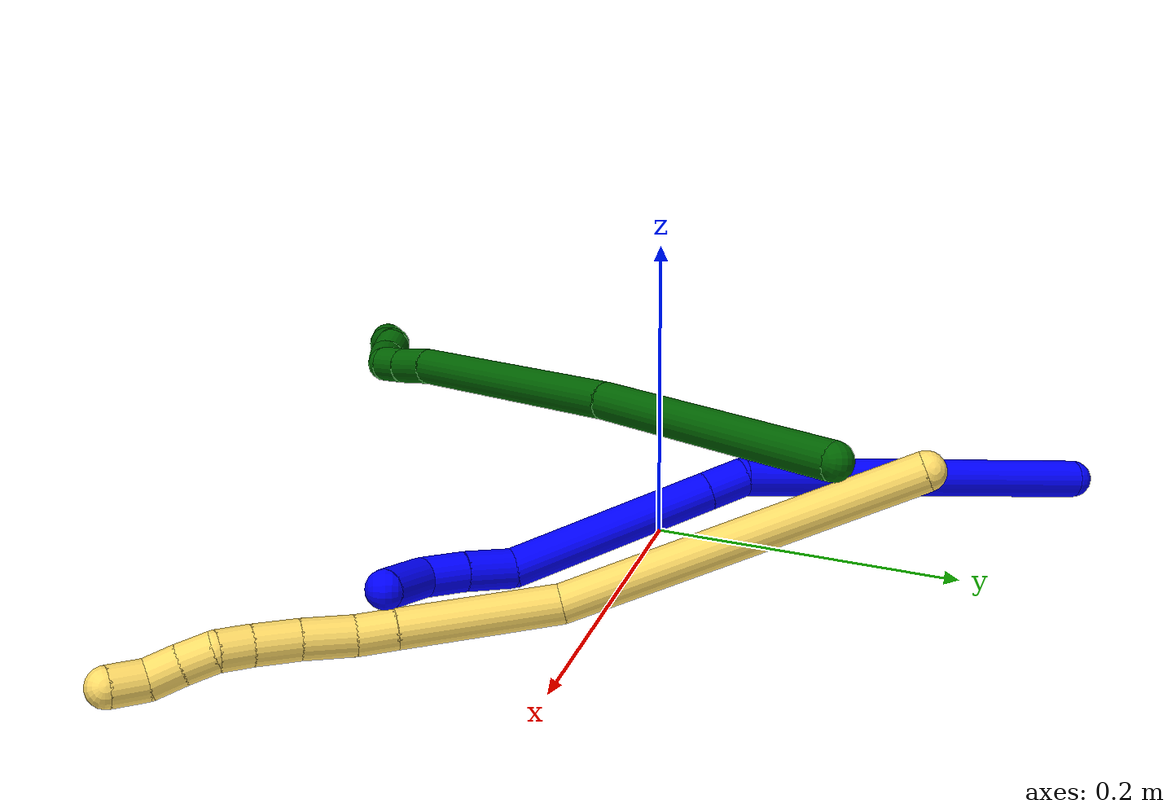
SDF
<sdf version="1.7">
 <world name="default">
  <model name="photoneo_s_sensor">
   <static>1</static>
   <pose>0 0 2 1.57079 1.57079 3.14159</pose>
   <link name="link">
    <inertial><mass>0.1</mass></inertial>
    <sensor name="sensor" type="depth">
     <update_rate>30</update_rate>
     <camera>
      <horizontal_fov>1.22</horizontal_fov>
      <image><width>1920</width><height>1200</height><format>B8G8R8</format></image>
      <clip><near>0.1</near><far>4</far></clip>
      <depth_camera><output>points</output></depth_camera>
     </camera>
     <plugin name="camera_plugin" filename="libgazebo_ros_depth_camera.so">
      <baseline>0.2</baseline>
      <alwaysOn>1</alwaysOn>
      <updateRate>0.0</updateRate>
      <cameraName>camera_ir</cameraName>
      <imageTopicName>/camera/color/image_raw</imageTopicName>
      <cameraInfoTopicName>/camera/color/camera_info</cameraInfoTopicName>
      <depthImageTopicName>/camera/depth/image_raw</depthImageTopicName>
      <depthImageCameraInfoTopicName>/camera/depth/camera_info</depthImageCameraInfoTopicName>
      <pointCloudTopicName>/camera/depth/points</pointCloudTopicName>
      <frameName>fr_optical</frameName>
      <pointCloudCutoff>0.1</pointCloudCutoff>
      <pointCloudCutoffMax>2.0</pointCloudCutoffMax>
      <distortionK1>0</distortionK1>
      <distortionK2>0</distortionK2>
      <distortionK3>0</distortionK3>
      <distortionT1>0</distortionT1>
      <distortionT2>0</distortionT2>
      <CxPrime>0</CxPrime>
      <Cx>0</Cx>
      <Cy>0</Cy>
      <focalLength>0</focalLength>
      <hackBaseline>0</hackBaseline>
     </plugin>
    </sensor>
   </link>
  </model>
  <model name="bin">
   <static>1</static>
   <link name="bottom">
    <collision name="collision-bottom">
     <pose>0 0 -0.01 0 -0 0</pose>
     <geometry><box><size>0.8 0.6 0.02</size></box></geometry>
     <surface>
      <friction><ode><mu>100</mu><mu2>100</mu2></ode></friction>
      <contact><collide_bitmask>65535</collide_bitmask></contact>
     </surface>
    </collision>
   </link>
   <link name="west_wall">
    <collision name="collision-west_wall">
     <pose>-0.41 0 0.1 0 -0 0</pose>
     <geometry><box><size>0.02 0.6 0.2</size></box></geometry>
     <surface>
      <friction><ode><mu>100</mu><mu2>100</mu2></ode></friction>
      <contact><collide_bitmask>65535</collide_bitmask></contact>
     </surface>
    </collision>
   </link>
   <link name="east_wall">
    <collision name="collision-east_wall">
     <pose>0.41 0 0.1 0 -0 0</pose>
     <geometry><box><size>0.02 0.6 0.2</size></box></geometry>
     <surface>
      <friction><ode><mu>100</mu><mu2>100</mu2></ode></friction>
      <contact><collide_bitmask>65535</collide_bitmask></contact>
     </surface>
    </collision>
   </link>
   <link name="south_wall">
    <collision name="collision-south_wall">
     <pose>0 -0.31 0.1 0 -0 0</pose>
     <geometry><box><size>0.8 0.02 0.2</size></box></geometry>
     <surface>
      <friction><ode><mu>100</mu><mu2>100</mu2></ode></friction>
      <contact><collide_bitmask>65535</collide_bitmask></contact>
     </surface>
    </collision>
   </link>
   <link name="north_wall">
    <collision name="collision-north_wall">
     <pose>0 0.31 0.1 0 -0 0</pose>
     <geometry><box><size>0.8 0.02 0.2</size></box></geometry>
     <surface>
      <friction><ode><mu>100</mu><mu2>100</mu2></ode></friction>
      <contact><collide_bitmask>65535</collide_bitmask></contact>
     </surface>
    </collision>
   </link>
  </model>
  <model name="1">
   <static>0</static>
   <link name="1">
    <collision name="collision-cylinder-e_1_1_4">
     <pose>-0.00286 -0.023312 -0.120487 2.95047 -0.0233 -0.241902</pose>
     <geometry><cylinder><radius>0.0125</radius><length>0.24551</length></cylinder></geometry>
     <surface>
      <friction><ode><mu>1.16</mu><mu2>1.16</mu2><slip1>0</slip1><slip2>0</slip2></ode></friction>
      <contact><ode><kp>1e+06</kp><kd>1</kd><max_vel>0</max_vel><min_depth>0.001</min_depth></ode></contact>
     </surface>
    </collision>
    <visual name="visual-cylinder-e_1_1_4">
     <pose>-0.00286 -0.023312 -0.120487 2.95047 -0.0233 -0.241902</pose>
     <geometry><cylinder><radius>0.0125</radius><length>0.24551</length></cylinder></geometry>
     <material><ambient>0 0 1 1</ambient></material>
    </visual>
    <collision name="collision-cylinder-e_2_4_5">
     <pose>-0.001154 -0.048313 -0.253252 3.00494 0.352973 2.40883</pose>
     <geometry><cylinder><radius>0.0125</radius><length>0.026415</length></cylinder></geometry>
     <surface>
      <friction><ode><mu>1.16</mu><mu2>1.16</mu2><slip1>0</slip1><slip2>0</slip2></ode></friction>
      <contact><ode><kp>1e+06</kp><kd>1</kd><max_vel>0</max_vel><min_depth>0.001</min_depth></ode></contact>
     </surface>
    </collision>
    <visual name="visual-cylinder-e_2_4_5">
     <pose>-0.001154 -0.048313 -0.253252 3.00494 0.352973 2.40883</pose>
     <geometry><cylinder><radius>0.0125</radius><length>0.026415</length></cylinder></geometry>
     <material><ambient>0 0 1 1</ambient></material>
    </visual>
    <collision name="collision-cylinder-e_3_5_6">
     <pose>0.026538 -0.058547 -0.328056 3.00576 0.351263 2.40954</pose>
     <geometry><cylinder><radius>0.0125</radius><length>0.134424</length></cylinder></geometry>
     <surface>
      <friction><ode><mu>1.16</mu><mu2>1.16</mu2><slip1>0</slip1><slip2>0</slip2></ode></friction>
      <contact><ode><kp>1e+06</kp><kd>1</kd><max_vel>0</max_vel><min_depth>0.001</min_depth></ode></contact>
     </surface>
    </collision>
    <visual name="visual-cylinder-e_3_5_6">
     <pose>0.026538 -0.058547 -0.328056 3.00576 0.351263 2.40954</pose>
     <geometry><cylinder><radius>0.0125</radius><length>0.134424</length></cylinder></geometry>
     <material><ambient>0 0 1 1</ambient></material>
    </visual>
    <collision name="collision-cylinder-e_4_6_7">
     <pose>0.049884 -0.071721 -0.405753 2.84544 0.01382 0.092578</pose>
     <geometry><cylinder><radius>0.0125</radius><length>0.031725</length></cylinder></geometry>
     <surface>
      <friction><ode><mu>1.16</mu><mu2>1.16</mu2><slip1>0</slip1><slip2>0</slip2></ode></friction>
      <contact><ode><kp>1e+06</kp><kd>1</kd><max_vel>0</max_vel><min_depth>0.001</min_depth></ode></contact>
     </surface>
    </collision>
    <visual name="visual-cylinder-e_4_6_7">
     <pose>0.049884 -0.071721 -0.405753 2.84544 0.01382 0.092578</pose>
     <geometry><cylinder><radius>0.0125</radius><length>0.031725</length></cylinder></geometry>
     <material><ambient>0 0 1 1</ambient></material>
    </visual>
    <collision name="collision-cylinder-e_5_7_8">
     <pose>0.051203 -0.080473 -0.433659 2.82853 0.082016 0.508697</pose>
     <geometry><cylinder><radius>0.0125</radius><length>0.026863</length></cylinder></geometry>
     <surface>
      <friction><ode><mu>1.16</mu><mu2>1.16</mu2><slip1>0</slip1><slip2>0</slip2></ode></friction>
      <contact><ode><kp>1e+06</kp><kd>1</kd><max_vel>0</max_vel><min_depth>0.001</min_depth></ode></contact>
     </surface>
    </collision>
    <visual name="visual-cylinder-e_5_7_8">
     <pose>0.051203 -0.080473 -0.433659 2.82853 0.082016 0.508697</pose>
     <geometry><cylinder><radius>0.0125</radius><length>0.026863</length></cylinder></geometry>
     <material><ambient>0 0 1 1</ambient></material>
    </visual>
    <collision name="collision-cylinder-e_6_8_2">
     <pose>0.0537 -0.098366 -0.457156 2.23415 0.079736 0.163231</pose>
     <geometry><cylinder><radius>0.0125</radius><length>0.035064</length></cylinder></geometry>
     <surface>
      <friction><ode><mu>1.16</mu><mu2>1.16</mu2><slip1>0</slip1><slip2>0</slip2></ode></friction>
      <contact><ode><kp>1e+06</kp><kd>1</kd><max_vel>0</max_vel><min_depth>0.001</min_depth></ode></contact>
     </surface>
    </collision>
    <visual name="visual-cylinder-e_6_8_2">
     <pose>0.0537 -0.098366 -0.457156 2.23415 0.079736 0.163231</pose>
     <geometry><cylinder><radius>0.0125</radius><length>0.035064</length></cylinder></geometry>
     <material><ambient>0 0 1 1</ambient></material>
    </visual>
    <collision name="collision-sphere-2">
     <pose>0.055097 -0.112136 -0.467917 0 -0 0</pose>
     <geometry><sphere><radius>0.0125</radius></sphere></geometry>
     <surface>
      <friction><ode><mu>1.16</mu><mu2>1.16</mu2><slip1>0</slip1><slip2>0</slip2></ode></friction>
      <contact><ode><kp>1e+06</kp><kd>1</kd><max_vel>0</max_vel><min_depth>0.001</min_depth></ode></contact>
     </surface>
    </collision>
    <visual name="visual-sphere-2">
     <pose>0.055097 -0.112136 -0.467917 0 -0 0</pose>
     <geometry><sphere><radius>0.0125</radius></sphere></geometry>
     <material><ambient>0 0 1 1</ambient></material>
    </visual>
    <collision name="collision-sphere-4">
     <pose>-0.00572 -0.046624 -0.240975 0 -0 0</pose>
     <geometry><sphere><radius>0.0125</radius></sphere></geometry>
     <surface>
      <friction><ode><mu>1.16</mu><mu2>1.16</mu2><slip1>0</slip1><slip2>0</slip2></ode></friction>
      <contact><ode><kp>1e+06</kp><kd>1</kd><max_vel>0</max_vel><min_depth>0.001</min_depth></ode></contact>
     </surface>
    </collision>
    <visual name="visual-sphere-4">
     <pose>-0.00572 -0.046624 -0.240975 0 -0 0</pose>
     <geometry><sphere><radius>0.0125</radius></sphere></geometry>
     <material><ambient>0 0 1 1</ambient></material>
    </visual>
    <collision name="collision-sphere-1">
     <geometry><sphere><radius>0.0125</radius></sphere></geometry>
     <surface>
      <friction><ode><mu>1.16</mu><mu2>1.16</mu2><slip1>0</slip1><slip2>0</slip2></ode></friction>
      <contact><ode><kp>1e+06</kp><kd>1</kd><max_vel>0</max_vel><min_depth>0.001</min_depth></ode></contact>
     </surface>
    </collision>
    <visual name="visual-sphere-1">
     <geometry><sphere><radius>0.0125</radius></sphere></geometry>
     <material><ambient>0 0 1 1</ambient></material>
    </visual>
    <collision name="collision-sphere-8">
     <pose>0.052304 -0.084596 -0.446395 0 -0 0</pose>
     <geometry><sphere><radius>0.0125</radius></sphere></geometry>
     <surface>
      <friction><ode><mu>1.16</mu><mu2>1.16</mu2><slip1>0</slip1><slip2>0</slip2></ode></friction>
      <contact><ode><kp>1e+06</kp><kd>1</kd><max_vel>0</max_vel><min_depth>0.001</min_depth></ode></contact>
     </surface>
    </collision>
    <visual name="visual-sphere-8">
     <pose>0.052304 -0.084596 -0.446395 0 -0 0</pose>
     <geometry><sphere><radius>0.0125</radius></sphere></geometry>
     <material><ambient>0 0 1 1</ambient></material>
    </visual>
    <collision name="collision-sphere-5">
     <pose>0.003411 -0.050001 -0.26553 0 -0 0</pose>
     <geometry><sphere><radius>0.0125</radius></sphere></geometry>
     <surface>
      <friction><ode><mu>1.16</mu><mu2>1.16</mu2><slip1>0</slip1><slip2>0</slip2></ode></friction>
      <contact><ode><kp>1e+06</kp><kd>1</kd><max_vel>0</max_vel><min_depth>0.001</min_depth></ode></contact>
     </surface>
    </collision>
    <visual name="visual-sphere-5">
     <pose>0.003411 -0.050001 -0.26553 0 -0 0</pose>
     <geometry><sphere><radius>0.0125</radius></sphere></geometry>
     <material><ambient>0 0 1 1</ambient></material>
    </visual>
    <collision name="collision-sphere-6">
     <pose>0.049665 -0.067092 -0.390583 0 -0 0</pose>
     <geometry><sphere><radius>0.0125</radius></sphere></geometry>
     <surface>
      <friction><ode><mu>1.16</mu><mu2>1.16</mu2><slip1>0</slip1><slip2>0</slip2></ode></friction>
      <contact><ode><kp>1e+06</kp><kd>1</kd><max_vel>0</max_vel><min_depth>0.001</min_depth></ode></contact>
     </surface>
    </collision>
    <visual name="visual-sphere-6">
     <pose>0.049665 -0.067092 -0.390583 0 -0 0</pose>
     <geometry><sphere><radius>0.0125</radius></sphere></geometry>
     <material><ambient>0 0 1 1</ambient></material>
    </visual>
    <collision name="collision-sphere-7">
     <pose>0.050103 -0.07635 -0.420924 0 -0 0</pose>
     <geometry><sphere><radius>0.0125</radius></sphere></geometry>
     <surface>
      <friction><ode><mu>1.16</mu><mu2>1.16</mu2><slip1>0</slip1><slip2>0</slip2></ode></friction>
      <contact><ode><kp>1e+06</kp><kd>1</kd><max_vel>0</max_vel><min_depth>0.001</min_depth></ode></contact>
     </surface>
    </collision>
    <visual name="visual-sphere-7">
     <pose>0.050103 -0.07635 -0.420924 0 -0 0</pose>
     <geometry><sphere><radius>0.0125</radius></sphere></geometry>
     <material><ambient>0 0 1 1</ambient></material>
    </visual>
    <inertial>
     <pose>0.015351 -0.045511 -0.241841 0 -0 0</pose>
     <mass>0.5</mass>
     <inertia>
      <ixx>0.000912</ixx>
      <ixy>0</ixy>
      <ixz>0</ixz>
      <iyy>-0.001203</iyy>
      <iyz>0</iyz>
      <izz>0.000188</izz>
     </inertia>
    </inertial>
   </link>
   <pose>-0.140643 0.253968 0.012121 -1.73472 1.17436 0.302519</pose>
  </model>
  <model name="5">
   <static>0</static>
   <link name="5">
    <collision name="collision-cylinder-e_1_1_4">
     <pose>0.06546 -0.081053 -0.051181 2.13402 0.599138 1.02146</pose>
     <geometry><cylinder><radius>0.0125</radius><length>0.232156</length></cylinder></geometry>
     <surface>
      <friction><ode><mu>1.16</mu><mu2>1.16</mu2><slip1>0</slip1><slip2>0</slip2></ode></friction>
      <contact><ode><kp>1e+06</kp><kd>1</kd><max_vel>0</max_vel><min_depth>0.001</min_depth></ode></contact>
     </surface>
    </collision>
    <visual name="visual-cylinder-e_1_1_4">
     <pose>0.06546 -0.081053 -0.051181 2.13402 0.599138 1.02146</pose>
     <geometry><cylinder><radius>0.0125</radius><length>0.232156</length></cylinder></geometry>
     <material><ambient>1 0.858824 0.4 1</ambient></material>
    </visual>
    <collision name="collision-cylinder-e_2_4_5">
     <pose>0.154455 -0.206651 -0.103453 1.59528 0.485945 0.497507</pose>
     <geometry><cylinder><radius>0.0125</radius><length>0.100785</length></cylinder></geometry>
     <surface>
      <friction><ode><mu>1.16</mu><mu2>1.16</mu2><slip1>0</slip1><slip2>0</slip2></ode></friction>
      <contact><ode><kp>1e+06</kp><kd>1</kd><max_vel>0</max_vel><min_depth>0.001</min_depth></ode></contact>
     </surface>
    </collision>
    <visual name="visual-cylinder-e_2_4_5">
     <pose>0.154455 -0.206651 -0.103453 1.59528 0.485945 0.497507</pose>
     <geometry><cylinder><radius>0.0125</radius><length>0.100785</length></cylinder></geometry>
     <material><ambient>1 0.858824 0.4 1</ambient></material>
    </visual>
    <collision name="collision-cylinder-e_3_5_6">
     <pose>0.183695 -0.261813 -0.105143 1.62719 0.492363 0.519704</pose>
     <geometry><cylinder><radius>0.0125</radius><length>0.024134</length></cylinder></geometry>
     <surface>
      <friction><ode><mu>1.16</mu><mu2>1.16</mu2><slip1>0</slip1><slip2>0</slip2></ode></friction>
      <contact><ode><kp>1e+06</kp><kd>1</kd><max_vel>0</max_vel><min_depth>0.001</min_depth></ode></contact>
     </surface>
    </collision>
    <visual name="visual-cylinder-e_3_5_6">
     <pose>0.183695 -0.261813 -0.105143 1.62719 0.492363 0.519704</pose>
     <geometry><cylinder><radius>0.0125</radius><length>0.024134</length></cylinder></geometry>
     <material><ambient>1 0.858824 0.4 1</ambient></material>
    </visual>
    <collision name="collision-cylinder-e_4_6_7">
     <pose>0.195797 -0.287206 -0.104626 1.49539 0.407603 0.378699</pose>
     <geometry><cylinder><radius>0.0125</radius><length>0.032281</length></cylinder></geometry>
     <surface>
      <friction><ode><mu>1.16</mu><mu2>1.16</mu2><slip1>0</slip1><slip2>0</slip2></ode></friction>
      <contact><ode><kp>1e+06</kp><kd>1</kd><max_vel>0</max_vel><min_depth>0.001</min_depth></ode></contact>
     </surface>
    </collision>
    <visual name="visual-cylinder-e_4_6_7">
     <pose>0.195797 -0.287206 -0.104626 1.49539 0.407603 0.378699</pose>
     <geometry><cylinder><radius>0.0125</radius><length>0.032281</length></cylinder></geometry>
     <material><ambient>1 0.858824 0.4 1</ambient></material>
    </visual>
    <collision name="collision-cylinder-e_5_7_8">
     <pose>0.208346 -0.314314 -0.101958 1.44561 0.459478 0.406856</pose>
     <geometry><cylinder><radius>0.0125</radius><length>0.027735</length></cylinder></geometry>
     <surface>
      <friction><ode><mu>1.16</mu><mu2>1.16</mu2><slip1>0</slip1><slip2>0</slip2></ode></friction>
      <contact><ode><kp>1e+06</kp><kd>1</kd><max_vel>0</max_vel><min_depth>0.001</min_depth></ode></contact>
     </surface>
    </collision>
    <visual name="visual-cylinder-e_5_7_8">
     <pose>0.208346 -0.314314 -0.101958 1.44561 0.459478 0.406856</pose>
     <geometry><cylinder><radius>0.0125</radius><length>0.027735</length></cylinder></geometry>
     <material><ambient>1 0.858824 0.4 1</ambient></material>
    </visual>
    <collision name="collision-cylinder-e_6_8_9">
     <pose>0.219364 -0.335358 -0.098661 1.3731 0.501238 0.413615</pose>
     <geometry><cylinder><radius>0.0125</radius><length>0.020261</length></cylinder></geometry>
     <surface>
      <friction><ode><mu>1.16</mu><mu2>1.16</mu2><slip1>0</slip1><slip2>0</slip2></ode></friction>
      <contact><ode><kp>1e+06</kp><kd>1</kd><max_vel>0</max_vel><min_depth>0.001</min_depth></ode></contact>
     </surface>
    </collision>
    <visual name="visual-cylinder-e_6_8_9">
     <pose>0.219364 -0.335358 -0.098661 1.3731 0.501238 0.413615</pose>
     <geometry><cylinder><radius>0.0125</radius><length>0.020261</length></cylinder></geometry>
     <material><ambient>1 0.858824 0.4 1</ambient></material>
    </visual>
    <collision name="collision-cylinder-e_7_9_10">
     <pose>0.230681 -0.351639 -0.09845 1.77072 0.695763 0.834832</pose>
     <geometry><cylinder><radius>0.0125</radius><length>0.020126</length></cylinder></geometry>
     <surface>
      <friction><ode><mu>1.16</mu><mu2>1.16</mu2><slip1>0</slip1><slip2>0</slip2></ode></friction>
      <contact><ode><kp>1e+06</kp><kd>1</kd><max_vel>0</max_vel><min_depth>0.001</min_depth></ode></contact>
     </surface>
    </collision>
    <visual name="visual-cylinder-e_7_9_10">
     <pose>0.230681 -0.351639 -0.09845 1.77072 0.695763 0.834832</pose>
     <geometry><cylinder><radius>0.0125</radius><length>0.020126</length></cylinder></geometry>
     <material><ambient>1 0.858824 0.4 1</ambient></material>
    </visual>
    <collision name="collision-cylinder-e_8_10_11">
     <pose>0.24413 -0.366568 -0.100831 1.68537 0.757038 0.839189</pose>
     <geometry><cylinder><radius>0.0125</radius><length>0.020382</length></cylinder></geometry>
     <surface>
      <friction><ode><mu>1.16</mu><mu2>1.16</mu2><slip1>0</slip1><slip2>0</slip2></ode></friction>
      <contact><ode><kp>1e+06</kp><kd>1</kd><max_vel>0</max_vel><min_depth>0.001</min_depth></ode></contact>
     </surface>
    </collision>
    <visual name="visual-cylinder-e_8_10_11">
     <pose>0.24413 -0.366568 -0.100831 1.68537 0.757038 0.839189</pose>
     <geometry><cylinder><radius>0.0125</radius><length>0.020382</length></cylinder></geometry>
     <material><ambient>1 0.858824 0.4 1</ambient></material>
    </visual>
    <collision name="collision-cylinder-e_9_11_2">
     <pose>0.256509 -0.383378 -0.099607 1.35517 0.507461 0.41143</pose>
     <geometry><cylinder><radius>0.0125</radius><length>0.022141</length></cylinder></geometry>
     <surface>
      <friction><ode><mu>1.16</mu><mu2>1.16</mu2><slip1>0</slip1><slip2>0</slip2></ode></friction>
      <contact><ode><kp>1e+06</kp><kd>1</kd><max_vel>0</max_vel><min_depth>0.001</min_depth></ode></contact>
     </surface>
    </collision>
    <visual name="visual-cylinder-e_9_11_2">
     <pose>0.256509 -0.383378 -0.099607 1.35517 0.507461 0.41143</pose>
     <geometry><cylinder><radius>0.0125</radius><length>0.022141</length></cylinder></geometry>
     <material><ambient>1 0.858824 0.4 1</ambient></material>
    </visual>
    <collision name="collision-sphere-2">
     <pose>0.261889 -0.392829 -0.097537 0 -0 0</pose>
     <geometry><sphere><radius>0.0125</radius></sphere></geometry>
     <surface>
      <friction><ode><mu>1.16</mu><mu2>1.16</mu2><slip1>0</slip1><slip2>0</slip2></ode></friction>
      <contact><ode><kp>1e+06</kp><kd>1</kd><max_vel>0</max_vel><min_depth>0.001</min_depth></ode></contact>
     </surface>
    </collision>
    <visual name="visual-sphere-2">
     <pose>0.261889 -0.392829 -0.097537 0 -0 0</pose>
     <geometry><sphere><radius>0.0125</radius></sphere></geometry>
     <material><ambient>1 0.858824 0.4 1</ambient></material>
    </visual>
    <collision name="collision-sphere-11">
     <pose>0.251129 -0.373927 -0.101678 0 -0 0</pose>
     <geometry><sphere><radius>0.0125</radius></sphere></geometry>
     <surface>
      <friction><ode><mu>1.16</mu><mu2>1.16</mu2><slip1>0</slip1><slip2>0</slip2></ode></friction>
      <contact><ode><kp>1e+06</kp><kd>1</kd><max_vel>0</max_vel><min_depth>0.001</min_depth></ode></contact>
     </surface>
    </collision>
    <visual name="visual-sphere-11">
     <pose>0.251129 -0.373927 -0.101678 0 -0 0</pose>
     <geometry><sphere><radius>0.0125</radius></sphere></geometry>
     <material><ambient>1 0.858824 0.4 1</ambient></material>
    </visual>
    <collision name="collision-sphere-10">
     <pose>0.237131 -0.359209 -0.099984 0 -0 0</pose>
     <geometry><sphere><radius>0.0125</radius></sphere></geometry>
     <surface>
      <friction><ode><mu>1.16</mu><mu2>1.16</mu2><slip1>0</slip1><slip2>0</slip2></ode></friction>
      <contact><ode><kp>1e+06</kp><kd>1</kd><max_vel>0</max_vel><min_depth>0.001</min_depth></ode></contact>
     </surface>
    </collision>
    <visual name="visual-sphere-10">
     <pose>0.237131 -0.359209 -0.099984 0 -0 0</pose>
     <geometry><sphere><radius>0.0125</radius></sphere></geometry>
     <material><ambient>1 0.858824 0.4 1</ambient></material>
    </visual>
    <collision name="collision-sphere-9">
     <pose>0.224231 -0.344069 -0.096916 0 -0 0</pose>
     <geometry><sphere><radius>0.0125</radius></sphere></geometry>
     <surface>
      <friction><ode><mu>1.16</mu><mu2>1.16</mu2><slip1>0</slip1><slip2>0</slip2></ode></friction>
      <contact><ode><kp>1e+06</kp><kd>1</kd><max_vel>0</max_vel><min_depth>0.001</min_depth></ode></contact>
     </surface>
    </collision>
    <visual name="visual-sphere-9">
     <pose>0.224231 -0.344069 -0.096916 0 -0 0</pose>
     <geometry><sphere><radius>0.0125</radius></sphere></geometry>
     <material><ambient>1 0.858824 0.4 1</ambient></material>
    </visual>
    <collision name="collision-sphere-4">
     <pose>0.13092 -0.162106 -0.102362 0 -0 0</pose>
     <geometry><sphere><radius>0.0125</radius></sphere></geometry>
     <surface>
      <friction><ode><mu>1.16</mu><mu2>1.16</mu2><slip1>0</slip1><slip2>0</slip2></ode></friction>
      <contact><ode><kp>1e+06</kp><kd>1</kd><max_vel>0</max_vel><min_depth>0.001</min_depth></ode></contact>
     </surface>
    </collision>
    <visual name="visual-sphere-4">
     <pose>0.13092 -0.162106 -0.102362 0 -0 0</pose>
     <geometry><sphere><radius>0.0125</radius></sphere></geometry>
     <material><ambient>1 0.858824 0.4 1</ambient></material>
    </visual>
    <collision name="collision-sphere-1">
     <geometry><sphere><radius>0.0125</radius></sphere></geometry>
     <surface>
      <friction><ode><mu>1.16</mu><mu2>1.16</mu2><slip1>0</slip1><slip2>0</slip2></ode></friction>
      <contact><ode><kp>1e+06</kp><kd>1</kd><max_vel>0</max_vel><min_depth>0.001</min_depth></ode></contact>
     </surface>
    </collision>
    <visual name="visual-sphere-1">
     <geometry><sphere><radius>0.0125</radius></sphere></geometry>
     <material><ambient>1 0.858824 0.4 1</ambient></material>
    </visual>
    <collision name="collision-sphere-8">
     <pose>0.214496 -0.326646 -0.100406 0 -0 0</pose>
     <geometry><sphere><radius>0.0125</radius></sphere></geometry>
     <surface>
      <friction><ode><mu>1.16</mu><mu2>1.16</mu2><slip1>0</slip1><slip2>0</slip2></ode></friction>
      <contact><ode><kp>1e+06</kp><kd>1</kd><max_vel>0</max_vel><min_depth>0.001</min_depth></ode></contact>
     </surface>
    </collision>
    <visual name="visual-sphere-8">
     <pose>0.214496 -0.326646 -0.100406 0 -0 0</pose>
     <geometry><sphere><radius>0.0125</radius></sphere></geometry>
     <material><ambient>1 0.858824 0.4 1</ambient></material>
    </visual>
    <collision name="collision-sphere-5">
     <pose>0.177991 -0.251197 -0.104544 0 -0 0</pose>
     <geometry><sphere><radius>0.0125</radius></sphere></geometry>
     <surface>
      <friction><ode><mu>1.16</mu><mu2>1.16</mu2><slip1>0</slip1><slip2>0</slip2></ode></friction>
      <contact><ode><kp>1e+06</kp><kd>1</kd><max_vel>0</max_vel><min_depth>0.001</min_depth></ode></contact>
     </surface>
    </collision>
    <visual name="visual-sphere-5">
     <pose>0.177991 -0.251197 -0.104544 0 -0 0</pose>
     <geometry><sphere><radius>0.0125</radius></sphere></geometry>
     <material><ambient>1 0.858824 0.4 1</ambient></material>
    </visual>
    <collision name="collision-sphere-6">
     <pose>0.189399 -0.27243 -0.105743 0 -0 0</pose>
     <geometry><sphere><radius>0.0125</radius></sphere></geometry>
     <surface>
      <friction><ode><mu>1.16</mu><mu2>1.16</mu2><slip1>0</slip1><slip2>0</slip2></ode></friction>
      <contact><ode><kp>1e+06</kp><kd>1</kd><max_vel>0</max_vel><min_depth>0.001</min_depth></ode></contact>
     </surface>
    </collision>
    <visual name="visual-sphere-6">
     <pose>0.189399 -0.27243 -0.105743 0 -0 0</pose>
     <geometry><sphere><radius>0.0125</radius></sphere></geometry>
     <material><ambient>1 0.858824 0.4 1</ambient></material>
    </visual>
    <collision name="collision-sphere-7">
     <pose>0.202196 -0.301982 -0.10351 0 -0 0</pose>
     <geometry><sphere><radius>0.0125</radius></sphere></geometry>
     <surface>
      <friction><ode><mu>1.16</mu><mu2>1.16</mu2><slip1>0</slip1><slip2>0</slip2></ode></friction>
      <contact><ode><kp>1e+06</kp><kd>1</kd><max_vel>0</max_vel><min_depth>0.001</min_depth></ode></contact>
     </surface>
    </collision>
    <visual name="visual-sphere-7">
     <pose>0.202196 -0.301982 -0.10351 0 -0 0</pose>
     <geometry><sphere><radius>0.0125</radius></sphere></geometry>
     <material><ambient>1 0.858824 0.4 1</ambient></material>
    </visual>
    <inertial>
     <pose>0.134076 -0.187566 -0.078584 0 -0 0</pose>
     <mass>0.5</mass>
     <inertia>
      <ixx>0.001339</ixx>
      <ixy>0</ixy>
      <ixz>0</ixz>
      <iyy>0.000911</iyy>
      <iyz>0</iyz>
      <izz>0.000177</izz>
     </inertia>
    </inertial>
   </link>
   <pose>0.048292 0.180232 0.098398 -0.610443 0.792743 -0.111287</pose>
  </model>
  <model name="6">
   <static>0</static>
   <link name="6">
    <collision name="collision-cylinder-e_1_1_4">
     <pose>-0.054215 0.070115 -0.022387 -1.87985 -0.634862 0.845337</pose>
     <geometry><cylinder><radius>0.0125</radius><length>0.182828</length></cylinder></geometry>
     <surface>
      <friction><ode><mu>1.16</mu><mu2>1.16</mu2><slip1>0</slip1><slip2>0</slip2></ode></friction>
      <contact><ode><kp>1e+06</kp><kd>1</kd><max_vel>0</max_vel><min_depth>0.001</min_depth></ode></contact>
     </surface>
    </collision>
    <visual name="visual-cylinder-e_1_1_4">
     <pose>-0.054215 0.070115 -0.022387 -1.87985 -0.634862 0.845337</pose>
     <geometry><cylinder><radius>0.0125</radius><length>0.182828</length></cylinder></geometry>
     <material><ambient>0 0.392157 0.003922 1</ambient></material>
    </visual>
    <collision name="collision-cylinder-e_2_4_5">
     <pose>-0.158135 0.21268 -0.063341 -1.82168 -0.586571 0.742239</pose>
     <geometry><cylinder><radius>0.0125</radius><length>0.179602</length></cylinder></geometry>
     <surface>
      <friction><ode><mu>1.16</mu><mu2>1.16</mu2><slip1>0</slip1><slip2>0</slip2></ode></friction>
      <contact><ode><kp>1e+06</kp><kd>1</kd><max_vel>0</max_vel><min_depth>0.001</min_depth></ode></contact>
     </surface>
    </collision>
    <visual name="visual-cylinder-e_2_4_5">
     <pose>-0.158135 0.21268 -0.063341 -1.82168 -0.586571 0.742239</pose>
     <geometry><cylinder><radius>0.0125</radius><length>0.179602</length></cylinder></geometry>
     <material><ambient>0 0.392157 0.003922 1</ambient></material>
    </visual>
    <collision name="collision-cylinder-e_3_5_6">
     <pose>-0.214363 0.297182 -0.085228 -1.83956 -0.480831 0.622684</pose>
     <geometry><cylinder><radius>0.0125</radius><length>0.028203</length></cylinder></geometry>
     <surface>
      <friction><ode><mu>1.16</mu><mu2>1.16</mu2><slip1>0</slip1><slip2>0</slip2></ode></friction>
      <contact><ode><kp>1e+06</kp><kd>1</kd><max_vel>0</max_vel><min_depth>0.001</min_depth></ode></contact>
     </surface>
    </collision>
    <visual name="visual-cylinder-e_3_5_6">
     <pose>-0.214363 0.297182 -0.085228 -1.83956 -0.480831 0.622684</pose>
     <geometry><cylinder><radius>0.0125</radius><length>0.028203</length></cylinder></geometry>
     <material><ambient>0 0.392157 0.003922 1</ambient></material>
    </visual>
    <collision name="collision-cylinder-e_4_6_7">
     <pose>-0.225982 0.317721 -0.091009 -1.85308 -0.523311 0.684904</pose>
     <geometry><cylinder><radius>0.0125</radius><length>0.0204</length></cylinder></geometry>
     <surface>
      <friction><ode><mu>1.16</mu><mu2>1.16</mu2><slip1>0</slip1><slip2>0</slip2></ode></friction>
      <contact><ode><kp>1e+06</kp><kd>1</kd><max_vel>0</max_vel><min_depth>0.001</min_depth></ode></contact>
     </surface>
    </collision>
    <visual name="visual-cylinder-e_4_6_7">
     <pose>-0.225982 0.317721 -0.091009 -1.85308 -0.523311 0.684904</pose>
     <geometry><cylinder><radius>0.0125</radius><length>0.0204</length></cylinder></geometry>
     <material><ambient>0 0.392157 0.003922 1</ambient></material>
    </visual>
    <collision name="collision-cylinder-e_5_7_8">
     <pose>-0.239358 0.334922 -0.087414 -0.963557 -0.662437 0.355817</pose>
     <geometry><cylinder><radius>0.0125</radius><length>0.02692</length></cylinder></geometry>
     <surface>
      <friction><ode><mu>1.16</mu><mu2>1.16</mu2><slip1>0</slip1><slip2>0</slip2></ode></friction>
      <contact><ode><kp>1e+06</kp><kd>1</kd><max_vel>0</max_vel><min_depth>0.001</min_depth></ode></contact>
     </surface>
    </collision>
    <visual name="visual-cylinder-e_5_7_8">
     <pose>-0.239358 0.334922 -0.087414 -0.963557 -0.662437 0.355817</pose>
     <geometry><cylinder><radius>0.0125</radius><length>0.02692</length></cylinder></geometry>
     <material><ambient>0 0.392157 0.003922 1</ambient></material>
    </visual>
    <collision name="collision-cylinder-e_6_8_9">
     <pose>-0.255049 0.347208 -0.075466 -0.544832 -0.82197 0.2423</pose>
     <geometry><cylinder><radius>0.0125</radius><length>0.020239</length></cylinder></geometry>
     <surface>
      <friction><ode><mu>1.16</mu><mu2>1.16</mu2><slip1>0</slip1><slip2>0</slip2></ode></friction>
      <contact><ode><kp>1e+06</kp><kd>1</kd><max_vel>0</max_vel><min_depth>0.001</min_depth></ode></contact>
     </surface>
    </collision>
    <visual name="visual-cylinder-e_6_8_9">
     <pose>-0.255049 0.347208 -0.075466 -0.544832 -0.82197 0.2423</pose>
     <geometry><cylinder><radius>0.0125</radius><length>0.020239</length></cylinder></geometry>
     <material><ambient>0 0.392157 0.003922 1</ambient></material>
    </visual>
    <collision name="collision-cylinder-e_7_9_10">
     <pose>-0.267445 0.359376 -0.06749 -1.33287 -0.513026 0.406861</pose>
     <geometry><cylinder><radius>0.0125</radius><length>0.020307</length></cylinder></geometry>
     <surface>
      <friction><ode><mu>1.16</mu><mu2>1.16</mu2><slip1>0</slip1><slip2>0</slip2></ode></friction>
      <contact><ode><kp>1e+06</kp><kd>1</kd><max_vel>0</max_vel><min_depth>0.001</min_depth></ode></contact>
     </surface>
    </collision>
    <visual name="visual-cylinder-e_7_9_10">
     <pose>-0.267445 0.359376 -0.06749 -1.33287 -0.513026 0.406861</pose>
     <geometry><cylinder><radius>0.0125</radius><length>0.020307</length></cylinder></geometry>
     <material><ambient>0 0.392157 0.003922 1</ambient></material>
    </visual>
    <collision name="collision-cylinder-e_8_10_2">
     <pose>-0.27846 0.375126 -0.060111 -0.933668 -0.595637 0.306963</pose>
     <geometry><cylinder><radius>0.0125</radius><length>0.0215</length></cylinder></geometry>
     <surface>
      <friction><ode><mu>1.16</mu><mu2>1.16</mu2><slip1>0</slip1><slip2>0</slip2></ode></friction>
      <contact><ode><kp>1e+06</kp><kd>1</kd><max_vel>0</max_vel><min_depth>0.001</min_depth></ode></contact>
     </surface>
    </collision>
    <visual name="visual-cylinder-e_8_10_2">
     <pose>-0.27846 0.375126 -0.060111 -0.933668 -0.595637 0.306963</pose>
     <geometry><cylinder><radius>0.0125</radius><length>0.0215</length></cylinder></geometry>
     <material><ambient>0 0.392157 0.003922 1</ambient></material>
    </visual>
    <collision name="collision-sphere-2">
     <pose>-0.284491 0.382279 -0.054817 0 -0 0</pose>
     <geometry><sphere><radius>0.0125</radius></sphere></geometry>
     <surface>
      <friction><ode><mu>1.16</mu><mu2>1.16</mu2><slip1>0</slip1><slip2>0</slip2></ode></friction>
      <contact><ode><kp>1e+06</kp><kd>1</kd><max_vel>0</max_vel><min_depth>0.001</min_depth></ode></contact>
     </surface>
    </collision>
    <visual name="visual-sphere-2">
     <pose>-0.284491 0.382279 -0.054817 0 -0 0</pose>
     <geometry><sphere><radius>0.0125</radius></sphere></geometry>
     <material><ambient>0 0.392157 0.003922 1</ambient></material>
    </visual>
    <collision name="collision-sphere-10">
     <pose>-0.272429 0.367973 -0.065405 0 -0 0</pose>
     <geometry><sphere><radius>0.0125</radius></sphere></geometry>
     <surface>
      <friction><ode><mu>1.16</mu><mu2>1.16</mu2><slip1>0</slip1><slip2>0</slip2></ode></friction>
      <contact><ode><kp>1e+06</kp><kd>1</kd><max_vel>0</max_vel><min_depth>0.001</min_depth></ode></contact>
     </surface>
    </collision>
    <visual name="visual-sphere-10">
     <pose>-0.272429 0.367973 -0.065405 0 -0 0</pose>
     <geometry><sphere><radius>0.0125</radius></sphere></geometry>
     <material><ambient>0 0.392157 0.003922 1</ambient></material>
    </visual>
    <collision name="collision-sphere-9">
     <pose>-0.262462 0.350779 -0.069575 0 -0 0</pose>
     <geometry><sphere><radius>0.0125</radius></sphere></geometry>
     <surface>
      <friction><ode><mu>1.16</mu><mu2>1.16</mu2><slip1>0</slip1><slip2>0</slip2></ode></friction>
      <contact><ode><kp>1e+06</kp><kd>1</kd><max_vel>0</max_vel><min_depth>0.001</min_depth></ode></contact>
     </surface>
    </collision>
    <visual name="visual-sphere-9">
     <pose>-0.262462 0.350779 -0.069575 0 -0 0</pose>
     <geometry><sphere><radius>0.0125</radius></sphere></geometry>
     <material><ambient>0 0.392157 0.003922 1</ambient></material>
    </visual>
    <collision name="collision-sphere-4">
     <pose>-0.108429 0.140231 -0.044773 0 -0 0</pose>
     <geometry><sphere><radius>0.0125</radius></sphere></geometry>
     <surface>
      <friction><ode><mu>1.16</mu><mu2>1.16</mu2><slip1>0</slip1><slip2>0</slip2></ode></friction>
      <contact><ode><kp>1e+06</kp><kd>1</kd><max_vel>0</max_vel><min_depth>0.001</min_depth></ode></contact>
     </surface>
    </collision>
    <visual name="visual-sphere-4">
     <pose>-0.108429 0.140231 -0.044773 0 -0 0</pose>
     <geometry><sphere><radius>0.0125</radius></sphere></geometry>
     <material><ambient>0 0.392157 0.003922 1</ambient></material>
    </visual>
    <collision name="collision-sphere-1">
     <geometry><sphere><radius>0.0125</radius></sphere></geometry>
     <surface>
      <friction><ode><mu>1.16</mu><mu2>1.16</mu2><slip1>0</slip1><slip2>0</slip2></ode></friction>
      <contact><ode><kp>1e+06</kp><kd>1</kd><max_vel>0</max_vel><min_depth>0.001</min_depth></ode></contact>
     </surface>
    </collision>
    <visual name="visual-sphere-1">
     <geometry><sphere><radius>0.0125</radius></sphere></geometry>
     <material><ambient>0 0.392157 0.003922 1</ambient></material>
    </visual>
    <collision name="collision-sphere-8">
     <pose>-0.247637 0.343638 -0.081358 0 -0 0</pose>
     <geometry><sphere><radius>0.0125</radius></sphere></geometry>
     <surface>
      <friction><ode><mu>1.16</mu><mu2>1.16</mu2><slip1>0</slip1><slip2>0</slip2></ode></friction>
      <contact><ode><kp>1e+06</kp><kd>1</kd><max_vel>0</max_vel><min_depth>0.001</min_depth></ode></contact>
     </surface>
    </collision>
    <visual name="visual-sphere-8">
     <pose>-0.247637 0.343638 -0.081358 0 -0 0</pose>
     <geometry><sphere><radius>0.0125</radius></sphere></geometry>
     <material><ambient>0 0.392157 0.003922 1</ambient></material>
    </visual>
    <collision name="collision-sphere-5">
     <pose>-0.207841 0.285128 -0.081909 0 -0 0</pose>
     <geometry><sphere><radius>0.0125</radius></sphere></geometry>
     <surface>
      <friction><ode><mu>1.16</mu><mu2>1.16</mu2><slip1>0</slip1><slip2>0</slip2></ode></friction>
      <contact><ode><kp>1e+06</kp><kd>1</kd><max_vel>0</max_vel><min_depth>0.001</min_depth></ode></contact>
     </surface>
    </collision>
    <visual name="visual-sphere-5">
     <pose>-0.207841 0.285128 -0.081909 0 -0 0</pose>
     <geometry><sphere><radius>0.0125</radius></sphere></geometry>
     <material><ambient>0 0.392157 0.003922 1</ambient></material>
    </visual>
    <collision name="collision-sphere-6">
     <pose>-0.220885 0.309236 -0.088548 0 -0 0</pose>
     <geometry><sphere><radius>0.0125</radius></sphere></geometry>
     <surface>
      <friction><ode><mu>1.16</mu><mu2>1.16</mu2><slip1>0</slip1><slip2>0</slip2></ode></friction>
      <contact><ode><kp>1e+06</kp><kd>1</kd><max_vel>0</max_vel><min_depth>0.001</min_depth></ode></contact>
     </surface>
    </collision>
    <visual name="visual-sphere-6">
     <pose>-0.220885 0.309236 -0.088548 0 -0 0</pose>
     <geometry><sphere><radius>0.0125</radius></sphere></geometry>
     <material><ambient>0 0.392157 0.003922 1</ambient></material>
    </visual>
    <collision name="collision-sphere-7">
     <pose>-0.23108 0.326206 -0.09347 0 -0 0</pose>
     <geometry><sphere><radius>0.0125</radius></sphere></geometry>
     <surface>
      <friction><ode><mu>1.16</mu><mu2>1.16</mu2><slip1>0</slip1><slip2>0</slip2></ode></friction>
      <contact><ode><kp>1e+06</kp><kd>1</kd><max_vel>0</max_vel><min_depth>0.001</min_depth></ode></contact>
     </surface>
    </collision>
    <visual name="visual-sphere-7">
     <pose>-0.23108 0.326206 -0.09347 0 -0 0</pose>
     <geometry><sphere><radius>0.0125</radius></sphere></geometry>
     <material><ambient>0 0.392157 0.003922 1</ambient></material>
    </visual>
    <inertial>
     <pose>-0.143985 0.194572 -0.052546 0 -0 0</pose>
     <mass>0.5</mass>
     <inertia>
      <ixx>0.001154</ixx>
      <ixy>0</ixy>
      <ixz>0</ixz>
      <iyy>0.000828</iyy>
      <iyz>0</iyz>
      <izz>-0.00022</izz>
     </inertia>
    </inertial>
   </link>
   <pose>0.070471 0.129632 0.107307 -1.93986 0.700392 0.642145</pose>
  </model>
 </world>
</sdf>
